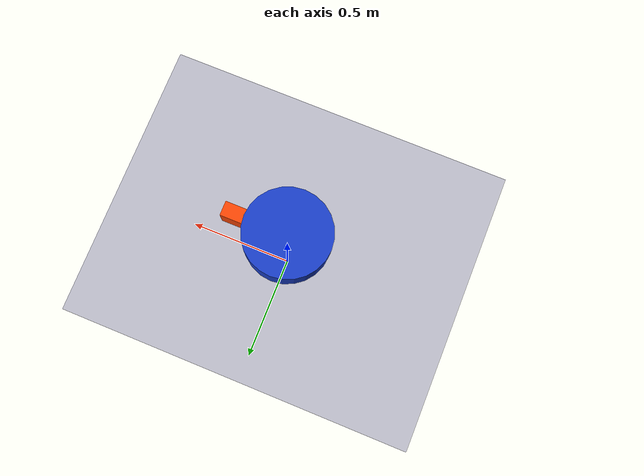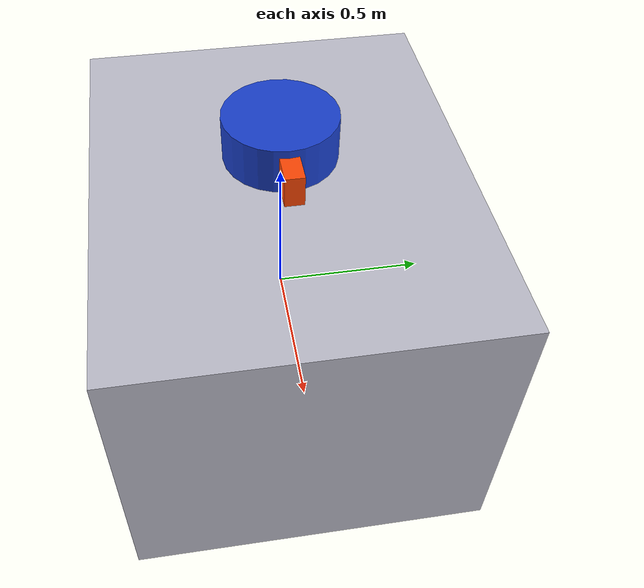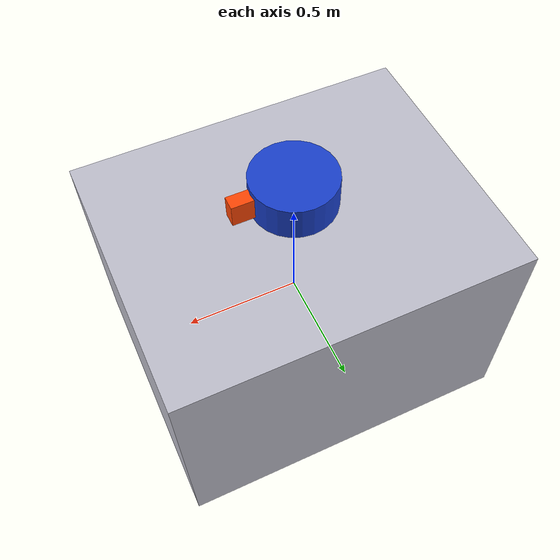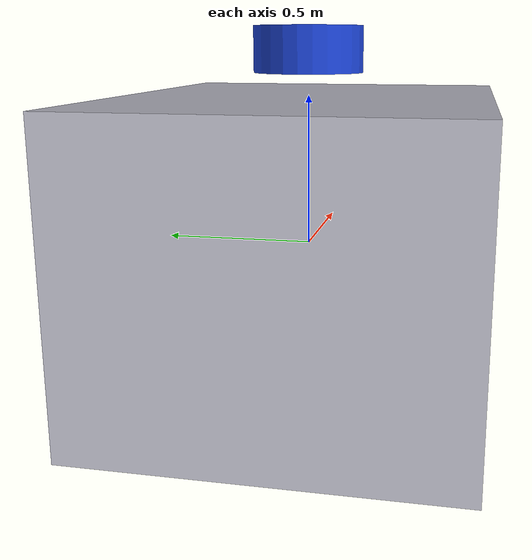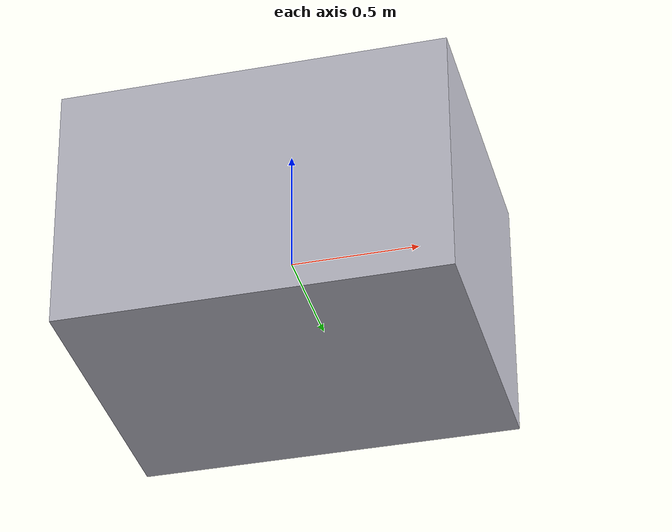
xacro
<?xml version="1.0"?>
<robot name="spacecraft_reaction" xmlns:xacro="http://www.ros.org/wiki/xacro">
  <link name="spacecraft_base">
    <inertial>
      <origin xyz="0 0 0" rpy="0 0 0"/>
      <mass value="400.0"/>
      <inertia ixx="81.333333" ixy="0.0" ixz="0.0" iyy="108.333333" iyz="0.0" izz="123.0"/>
    </inertial>
    <visual>
      <geometry><box size="1.5 1.2 1.0"/></geometry>
      <material name="spacecraft_white"><color rgba="0.75 0.75 0.8 1.0"/></material>
    </visual>
    <collision><geometry><box size="1.5 1.2 1.0"/></geometry></collision>
  </link>

  <link name="wrist_link">
    <inertial>
      <origin xyz="0 0 0" rpy="0 0 0"/>
      <mass value="12.0"/>
      <inertia ixx="0.20" ixy="0.0" ixz="0.0" iyy="0.20" iyz="0.0" izz="0.389"/>
    </inertial>
    <visual>
      <geometry><cylinder radius="0.18" length="0.15"/></geometry>
      <material name="wrist_blue"><color rgba="0.1 0.25 0.8 1.0"/></material>
    </visual>
    <!-- An off-axis marker makes rotation about the cylindrical joint visible. -->
    <visual>
      <origin xyz="0.19 0 0" rpy="0 0 0"/>
      <geometry><box size="0.16 0.06 0.10"/></geometry>
      <material name="wrist_marker_orange"><color rgba="1.0 0.28 0.02 1.0"/></material>
    </visual>
    <collision><geometry><cylinder radius="0.18" length="0.15"/></geometry></collision>
  </link>

  <!-- No joint connects spacecraft_base to world: the model is free floating. -->
  <joint name="joint_6" type="continuous">
    <parent link="spacecraft_base"/>
    <child link="wrist_link"/>
    <origin xyz="0 0 0.65" rpy="0 0 0"/>
    <axis xyz="0 0 1"/>
    <dynamics damping="0.0" friction="0.0"/>
    <limit effort="50.0" velocity="4.0"/>
  </joint>

  <ros2_control name="GazeboSimSystem" type="system">
    <hardware>
      <plugin>gz_ros2_control/GazeboSimSystem</plugin>
    </hardware>
    <joint name="joint_6">
      <command_interface name="effort">
        <param name="min">-50.0</param>
        <param name="max">50.0</param>
      </command_interface>
      <state_interface name="position"/>
      <state_interface name="velocity"/>
      <state_interface name="effort"/>
    </joint>
  </ros2_control>

  <gazebo>
    <plugin filename="gz-sim-odometry-publisher-system"
            name="gz::sim::systems::OdometryPublisher">
      <dimensions>3</dimensions>
      <odom_publish_frequency>100</odom_publish_frequency>
    </plugin>
    <plugin filename="libgz_ros2_control-system.so" name="gz_ros2_control::GazeboSimROS2ControlPlugin">
      <parameters>$(find spacecraft_reaction_sim)/config/controllers.yaml</parameters>
      <hold_joints>false</hold_joints>
    </plugin>
  </gazebo>
</robot>
